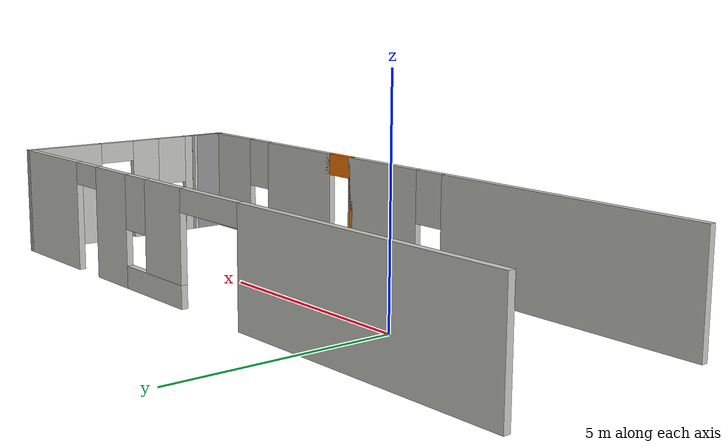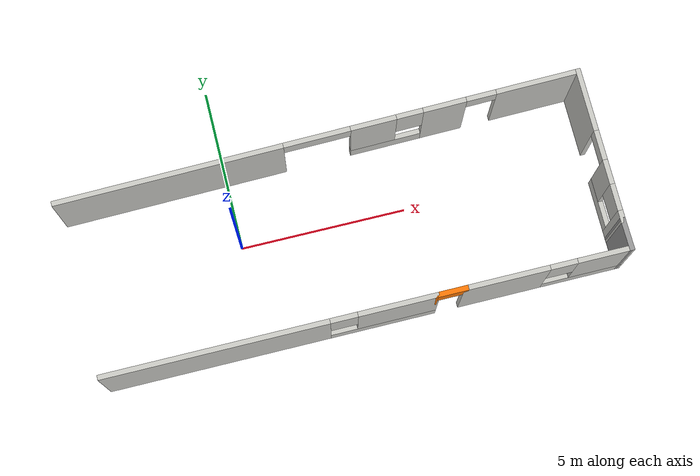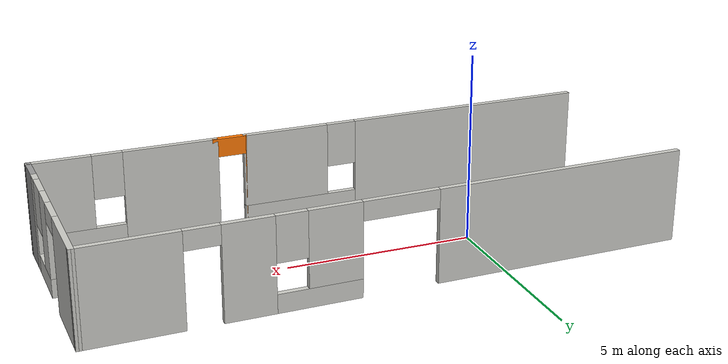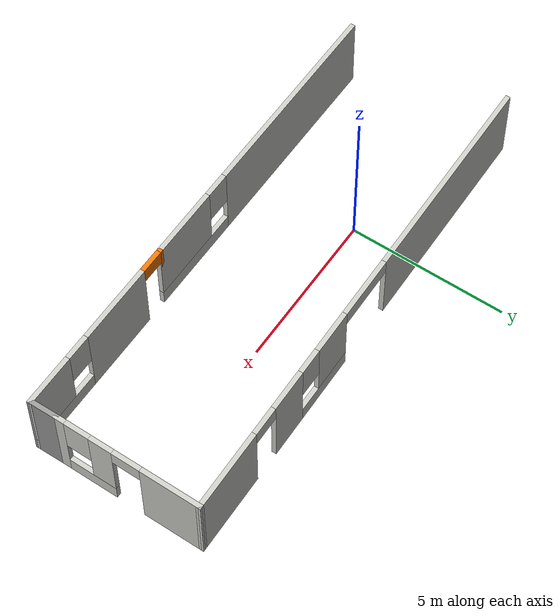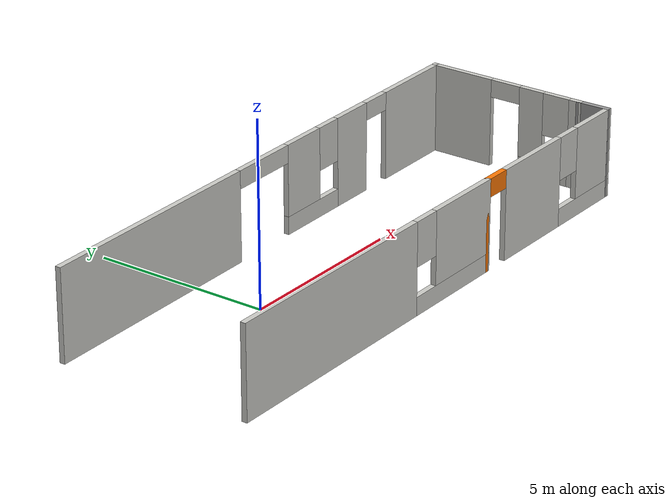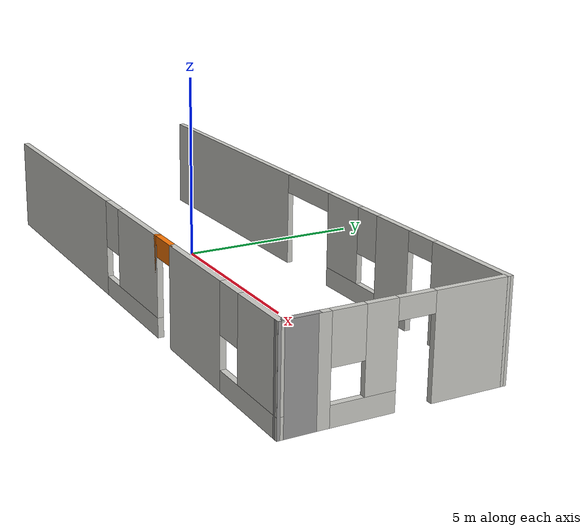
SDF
<?xml version='1.0'?>
<sdf version='1.6'>
  <model name='Corridor_With_Doors'>
    <pose frame=''>2.9217 -0.469634 0 0 -0 0</pose>
    <link name='Wall_14'>
      <pose frame=''>-2.71464 -2.71572 0 0 -0 0</pose>
      <visual name='Wall_14_Visual_0'>
        <pose frame=''>-1.57797 0 1.25 0 -0 0</pose>
        <geometry>
          <box>
            <size>6.6343 0.15 2.5</size>
          </box>
        </geometry>
        <material>
          <script>
            <uri>file://media/materials/scripts/gazebo.material</uri>
            <name>Gazebo/CeilingTiled</name>
          </script>
          <ambient>1 1 1 1</ambient>
        </material>
      </visual>
      <collision name='Wall_14_Collision_0'>
        <geometry>
          <box>
            <size>6.6343 0.15 2.5</size>
          </box>
        </geometry>
        <pose frame=''>-1.57797 0 1.25 0 -0 0</pose>
      </collision>
      <visual name='Wall_14_Visual_1'>
        <pose frame=''>3.31715 0 0.25 0 -0 0</pose>
        <geometry>
          <box>
            <size>3.15593 0.15 0.5</size>
          </box>
        </geometry>
        <material>
          <script>
            <uri>file://media/materials/scripts/gazebo.material</uri>
            <name>Gazebo/CeilingTiled</name>
          </script>
          <ambient>1 1 1 1</ambient>
        </material>
      </visual>
      <collision name='Wall_14_Collision_1'>
        <geometry>
          <box>
            <size>3.15593 0.15 0.5</size>
          </box>
        </geometry>
        <pose frame=''>3.31715 0 0.25 0 -0 0</pose>
      </collision>
      <visual name='Wall_14_Visual_2'>
        <pose frame=''>3.71715 0 1.5 0 -0 0</pose>
        <geometry>
          <box>
            <size>2.35593 0.15 2</size>
          </box>
        </geometry>
        <material>
          <script>
            <uri>file://media/materials/scripts/gazebo.material</uri>
            <name>Gazebo/CeilingTiled</name>
          </script>
          <ambient>1 1 1 1</ambient>
        </material>
      </visual>
      <collision name='Wall_14_Collision_2'>
        <geometry>
          <box>
            <size>2.35593 0.15 2</size>
          </box>
        </geometry>
        <pose frame=''>3.71715 0 1.5 0 -0 0</pose>
      </collision>
      <visual name='Wall_14_Visual_3'>
        <pose frame=''>2.13918 0 1.9 0 -0 0</pose>
        <geometry>
          <box>
            <size>0.8 0.15 1.2</size>
          </box>
        </geometry>
        <material>
          <script>
            <uri>file://media/materials/scripts/gazebo.material</uri>
            <name>Gazebo/CeilingTiled</name>
          </script>
          <ambient>1 1 1 1</ambient>
        </material>
      </visual>
      <collision name='Wall_14_Collision_3'>
        <geometry>
          <box>
            <size>0.8 0.15 1.2</size>
          </box>
        </geometry>
        <pose frame=''>2.13918 0 1.9 0 -0 0</pose>
      </collision>
    </link>
    <link name='Wall_18'>
      <pose frame=''>2.53047 -2.71572 0 0 -0 0</pose>
      <visual name='Wall_18_Visual_0'>
        <pose frame=''>-0.44905 0 1.25 0 -0 0</pose>
        <geometry>
          <box>
            <size>0.101899 0.15 2.5</size>
          </box>
        </geometry>
        <material>
          <script>
            <uri>file://media/materials/scripts/gazebo.material</uri>
            <name>Gazebo/Grey</name>
          </script>
          <ambient>0.996078 0.47451 0.0196078 1</ambient>
        </material>
      </visual>
      <collision name='Wall_18_Collision_0'>
        <geometry>
          <box>
            <size>0.101899 0.15 2.5</size>
          </box>
        </geometry>
        <pose frame=''>-0.44905 0 1.25 0 -0 0</pose>
      </collision>
      <visual name='Wall_18_Visual_1'>
        <pose frame=''>0.05095 0 2.25 0 -0 0</pose>
        <geometry>
          <box>
            <size>0.898101 0.15 0.5</size>
          </box>
        </geometry>
        <material>
          <script>
            <uri>file://media/materials/scripts/gazebo.material</uri>
            <name>Gazebo/Grey</name>
          </script>
          <ambient>0.996078 0.47451 0.0196078 1</ambient>
        </material>
      </visual>
      <collision name='Wall_18_Collision_1'>
        <geometry>
          <box>
            <size>0.898101 0.15 0.5</size>
          </box>
        </geometry>
        <pose frame=''>0.05095 0 2.25 0 -0 0</pose>
      </collision>
    </link>
    <link name='Wall_19'>
      <pose frame=''>5.38047 -2.71572 0 0 -0 0</pose>
      <visual name='Wall_19_Visual_0'>
        <pose frame=''>-1.22991 0 1.25 0 -0 0</pose>
        <geometry>
          <box>
            <size>2.54019 0.15 2.5</size>
          </box>
        </geometry>
        <material>
          <script>
            <uri>file://media/materials/scripts/gazebo.material</uri>
            <name>Gazebo/CeilingTiled</name>
          </script>
          <ambient>1 1 1 1</ambient>
        </material>
      </visual>
      <collision name='Wall_19_Collision_0'>
        <geometry>
          <box>
            <size>2.54019 0.15 2.5</size>
          </box>
        </geometry>
        <pose frame=''>-1.22991 0 1.25 0 -0 0</pose>
      </collision>
      <visual name='Wall_19_Visual_1'>
        <pose frame=''>1.27009 0 0.25 0 -0 0</pose>
        <geometry>
          <box>
            <size>2.45981 0.15 0.5</size>
          </box>
        </geometry>
        <material>
          <script>
            <uri>file://media/materials/scripts/gazebo.material</uri>
            <name>Gazebo/CeilingTiled</name>
          </script>
          <ambient>1 1 1 1</ambient>
        </material>
      </visual>
      <collision name='Wall_19_Collision_1'>
        <geometry>
          <box>
            <size>2.45981 0.15 0.5</size>
          </box>
        </geometry>
        <pose frame=''>1.27009 0 0.25 0 -0 0</pose>
      </collision>
      <visual name='Wall_19_Visual_2'>
        <pose frame=''>1.67009 0 1.5 0 -0 0</pose>
        <geometry>
          <box>
            <size>1.65982 0.15 2</size>
          </box>
        </geometry>
        <material>
          <script>
            <uri>file://media/materials/scripts/gazebo.material</uri>
            <name>Gazebo/CeilingTiled</name>
          </script>
          <ambient>1 1 1 1</ambient>
        </material>
      </visual>
      <collision name='Wall_19_Collision_2'>
        <geometry>
          <box>
            <size>1.65982 0.15 2</size>
          </box>
        </geometry>
        <pose frame=''>1.67009 0 1.5 0 -0 0</pose>
      </collision>
      <visual name='Wall_19_Visual_3'>
        <pose frame=''>0.440185 0 1.9 0 -0 0</pose>
        <geometry>
          <box>
            <size>0.8 0.15 1.2</size>
          </box>
        </geometry>
        <material>
          <script>
            <uri>file://media/materials/scripts/gazebo.material</uri>
            <name>Gazebo/CeilingTiled</name>
          </script>
          <ambient>1 1 1 1</ambient>
        </material>
      </visual>
      <collision name='Wall_19_Collision_3'>
        <geometry>
          <box>
            <size>0.8 0.15 1.2</size>
          </box>
        </geometry>
        <pose frame=''>0.440185 0 1.9 0 -0 0</pose>
      </collision>
    </link>
    <link name='Wall_20'>
      <collision name='Wall_20_Collision'>
        <geometry>
          <box>
            <size>0.981284 0.15 2.5</size>
          </box>
        </geometry>
        <pose frame=''>0 0 1.25 0 -0 0</pose>
      </collision>
      <visual name='Wall_20_Visual'>
        <pose frame=''>0 0 1.25 0 -0 0</pose>
        <geometry>
          <box>
            <size>0.981284 0.15 2.5</size>
          </box>
        </geometry>
        <material>
          <script>
            <uri>file://media/materials/scripts/gazebo.material</uri>
            <name>Gazebo/Grey</name>
          </script>
          <ambient>1 1 1 1</ambient>
        </material>
      </visual>
      <pose frame=''>7.80012 -2.30012 0 0 -0 1.58367</pose>
    </link>
    <link name='Wall_6'>
      <pose frame=''>7.79476 0.415491 0 0 -0 1.5708</pose>
      <visual name='Wall_6_Visual_0'>
        <pose frame=''>-2.19002 0 1.25 0 -0 0</pose>
        <geometry>
          <box>
            <size>0.369959 0.15 2.5</size>
          </box>
        </geometry>
        <material>
          <script>
            <uri>file://media/materials/scripts/gazebo.material</uri>
            <name>Gazebo/CeilingTiled</name>
          </script>
          <ambient>1 1 1 1</ambient>
        </material>
      </visual>
      <collision name='Wall_6_Collision_0'>
        <geometry>
          <box>
            <size>0.369959 0.15 2.5</size>
          </box>
        </geometry>
        <pose frame=''>-2.19002 0 1.25 0 -0 0</pose>
      </collision>
      <visual name='Wall_6_Visual_1'>
        <pose frame=''>1.40759 0 1.25 0 -0 0</pose>
        <geometry>
          <box>
            <size>1.93483 0.15 2.5</size>
          </box>
        </geometry>
        <material>
          <script>
            <uri>file://media/materials/scripts/gazebo.material</uri>
            <name>Gazebo/CeilingTiled</name>
          </script>
          <ambient>1 1 1 1</ambient>
        </material>
      </visual>
      <collision name='Wall_6_Collision_1'>
        <geometry>
          <box>
            <size>1.93483 0.15 2.5</size>
          </box>
        </geometry>
        <pose frame=''>1.40759 0 1.25 0 -0 0</pose>
      </collision>
      <visual name='Wall_6_Visual_2'>
        <pose frame=''>-1.23243 0 0.25 0 -0 0</pose>
        <geometry>
          <box>
            <size>1.54521 0.15 0.5</size>
          </box>
        </geometry>
        <material>
          <script>
            <uri>file://media/materials/scripts/gazebo.material</uri>
            <name>Gazebo/CeilingTiled</name>
          </script>
          <ambient>1 1 1 1</ambient>
        </material>
      </visual>
      <collision name='Wall_6_Collision_2'>
        <geometry>
          <box>
            <size>1.54521 0.15 0.5</size>
          </box>
        </geometry>
        <pose frame=''>-1.23243 0 0.25 0 -0 0</pose>
      </collision>
      <visual name='Wall_6_Visual_3'>
        <pose frame=''>-0.832434 0 1.5 0 -0 0</pose>
        <geometry>
          <box>
            <size>0.745214 0.15 2</size>
          </box>
        </geometry>
        <material>
          <script>
            <uri>file://media/materials/scripts/gazebo.material</uri>
            <name>Gazebo/CeilingTiled</name>
          </script>
          <ambient>1 1 1 1</ambient>
        </material>
      </visual>
      <collision name='Wall_6_Collision_3'>
        <geometry>
          <box>
            <size>0.745214 0.15 2</size>
          </box>
        </geometry>
        <pose frame=''>-0.832434 0 1.5 0 -0 0</pose>
      </collision>
      <visual name='Wall_6_Visual_4'>
        <pose frame=''>-1.60504 0 1.9 0 -0 0</pose>
        <geometry>
          <box>
            <size>0.8 0.15 1.2</size>
          </box>
        </geometry>
        <material>
          <script>
            <uri>file://media/materials/scripts/gazebo.material</uri>
            <name>Gazebo/CeilingTiled</name>
          </script>
          <ambient>1 1 1 1</ambient>
        </material>
      </visual>
      <collision name='Wall_6_Collision_4'>
        <geometry>
          <box>
            <size>0.8 0.15 1.2</size>
          </box>
        </geometry>
        <pose frame=''>-1.60504 0 1.9 0 -0 0</pose>
      </collision>
      <visual name='Wall_6_Visual_5'>
        <pose frame=''>-0.009827 0 2.25 0 -0 0</pose>
        <geometry>
          <box>
            <size>0.9 0.15 0.5</size>
          </box>
        </geometry>
        <material>
          <script>
            <uri>file://media/materials/scripts/gazebo.material</uri>
            <name>Gazebo/CeilingTiled</name>
          </script>
          <ambient>1 1 1 1</ambient>
        </material>
      </visual>
      <collision name='Wall_6_Collision_5'>
        <geometry>
          <box>
            <size>0.9 0.15 0.5</size>
          </box>
        </geometry>
        <pose frame=''>-0.009827 0 2.25 0 -0 0</pose>
      </collision>
    </link>
    <link name='Wall_7'>
      <pose frame=''>-0.005236 2.59049 0 0 0 -3.12557</pose>
      <visual name='Wall_7_Visual_0'>
        <pose frame=''>-6.59353 0 1.25 0 -0 0</pose>
        <geometry>
          <box>
            <size>2.56494 0.15 2.5</size>
          </box>
        </geometry>
        <material>
          <script>
            <uri>file://media/materials/scripts/gazebo.material</uri>
            <name>Gazebo/CeilingTiled</name>
          </script>
          <ambient>1 1 1 1</ambient>
        </material>
      </visual>
      <collision name='Wall_7_Collision_0'>
        <geometry>
          <box>
            <size>2.56494 0.15 2.5</size>
          </box>
        </geometry>
        <pose frame=''>-6.59353 0 1.25 0 -0 0</pose>
      </collision>
      <visual name='Wall_7_Visual_1'>
        <pose frame=''>-3.75985 0 1.25 0 -0 0</pose>
        <geometry>
          <box>
            <size>1.30243 0.15 2.5</size>
          </box>
        </geometry>
        <material>
          <script>
            <uri>file://media/materials/scripts/gazebo.material</uri>
            <name>Gazebo/CeilingTiled</name>
          </script>
          <ambient>1 1 1 1</ambient>
        </material>
      </visual>
      <collision name='Wall_7_Collision_1'>
        <geometry>
          <box>
            <size>1.30243 0.15 2.5</size>
          </box>
        </geometry>
        <pose frame=''>-3.75985 0 1.25 0 -0 0</pose>
      </collision>
      <visual name='Wall_7_Visual_2'>
        <pose frame=''>4.4717 0 1.25 0 -0 0</pose>
        <geometry>
          <box>
            <size>6.80861 0.15 2.5</size>
          </box>
        </geometry>
        <material>
          <script>
            <uri>file://media/materials/scripts/gazebo.material</uri>
            <name>Gazebo/CeilingTiled</name>
          </script>
          <ambient>1 1 1 1</ambient>
        </material>
      </visual>
      <collision name='Wall_7_Collision_2'>
        <geometry>
          <box>
            <size>6.80861 0.15 2.5</size>
          </box>
        </geometry>
        <pose frame=''>4.4717 0 1.25 0 -0 0</pose>
      </collision>
      <visual name='Wall_7_Visual_3'>
        <pose frame=''>-2.02062 0 0.25 0 -0 0</pose>
        <geometry>
          <box>
            <size>2.17603 0.15 0.5</size>
          </box>
        </geometry>
        <material>
          <script>
            <uri>file://media/materials/scripts/gazebo.material</uri>
            <name>Gazebo/CeilingTiled</name>
          </script>
          <ambient>1 1 1 1</ambient>
        </material>
      </visual>
      <collision name='Wall_7_Collision_3'>
        <geometry>
          <box>
            <size>2.17603 0.15 0.5</size>
          </box>
        </geometry>
        <pose frame=''>-2.02062 0 0.25 0 -0 0</pose>
      </collision>
      <visual name='Wall_7_Visual_4'>
        <pose frame=''>-1.62062 0 1.5 0 -0 0</pose>
        <geometry>
          <box>
            <size>1.37603 0.15 2</size>
          </box>
        </geometry>
        <material>
          <script>
            <uri>file://media/materials/scripts/gazebo.material</uri>
            <name>Gazebo/CeilingTiled</name>
          </script>
          <ambient>1 1 1 1</ambient>
        </material>
      </visual>
      <collision name='Wall_7_Collision_4'>
        <geometry>
          <box>
            <size>1.37603 0.15 2</size>
          </box>
        </geometry>
        <pose frame=''>-1.62062 0 1.5 0 -0 0</pose>
      </collision>
      <visual name='Wall_7_Visual_5'>
        <pose frame=''>-2.70863 0 1.9 0 -0 0</pose>
        <geometry>
          <box>
            <size>0.8 0.15 1.2</size>
          </box>
        </geometry>
        <material>
          <script>
            <uri>file://media/materials/scripts/gazebo.material</uri>
            <name>Gazebo/CeilingTiled</name>
          </script>
          <ambient>1 1 1 1</ambient>
        </material>
      </visual>
      <collision name='Wall_7_Collision_5'>
        <geometry>
          <box>
            <size>0.8 0.15 1.2</size>
          </box>
        </geometry>
        <pose frame=''>-2.70863 0 1.9 0 -0 0</pose>
      </collision>
      <visual name='Wall_7_Visual_6'>
        <pose frame=''>-4.86106 0 2.25 0 -0 0</pose>
        <geometry>
          <box>
            <size>0.9 0.15 0.5</size>
          </box>
        </geometry>
        <material>
          <script>
            <uri>file://media/materials/scripts/gazebo.material</uri>
            <name>Gazebo/CeilingTiled</name>
          </script>
          <ambient>1 1 1 1</ambient>
        </material>
      </visual>
      <collision name='Wall_7_Collision_6'>
        <geometry>
          <box>
            <size>0.9 0.15 0.5</size>
          </box>
        </geometry>
        <pose frame=''>-4.86106 0 2.25 0 -0 0</pose>
      </collision>
      <visual name='Wall_7_Visual_7'>
        <pose frame=''>0.067396 0 2.25 0 -0 0</pose>
        <geometry>
          <box>
            <size>2 0.15 0.5</size>
          </box>
        </geometry>
        <material>
          <script>
            <uri>file://media/materials/scripts/gazebo.material</uri>
            <name>Gazebo/CeilingTiled</name>
          </script>
          <ambient>1 1 1 1</ambient>
        </material>
      </visual>
      <collision name='Wall_7_Collision_7'>
        <geometry>
          <box>
            <size>2 0.15 0.5</size>
          </box>
        </geometry>
        <pose frame=''>0.067396 0 2.25 0 -0 0</pose>
      </collision>
    </link>
    <static>1</static>
  </model>
</sdf>
